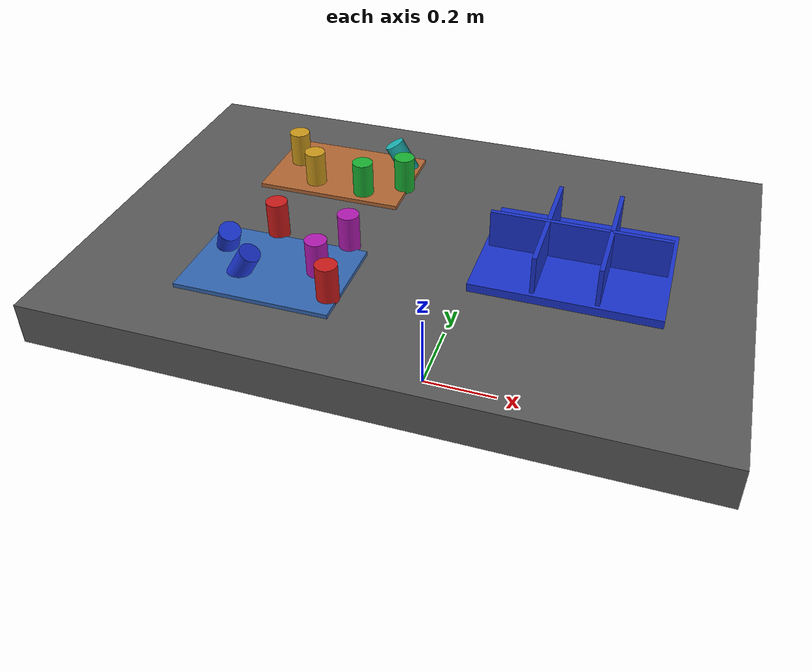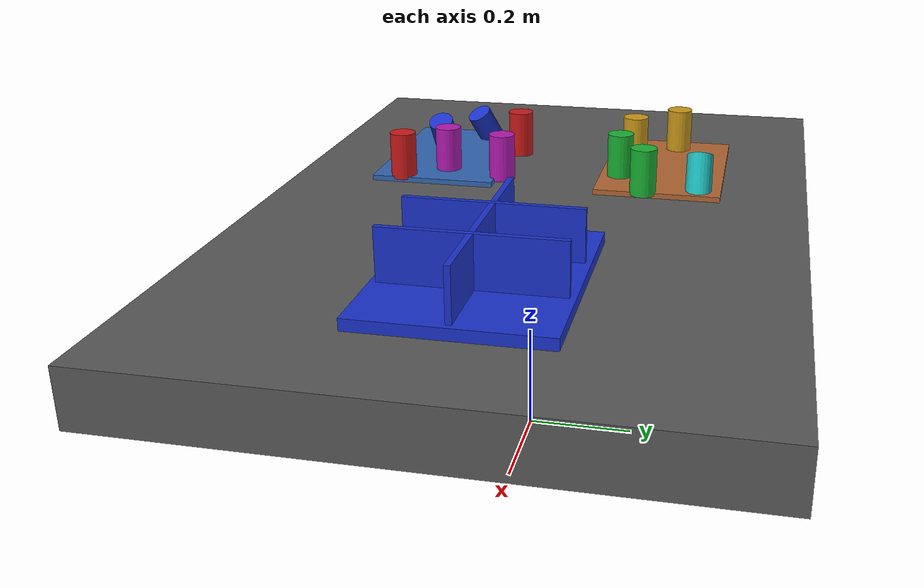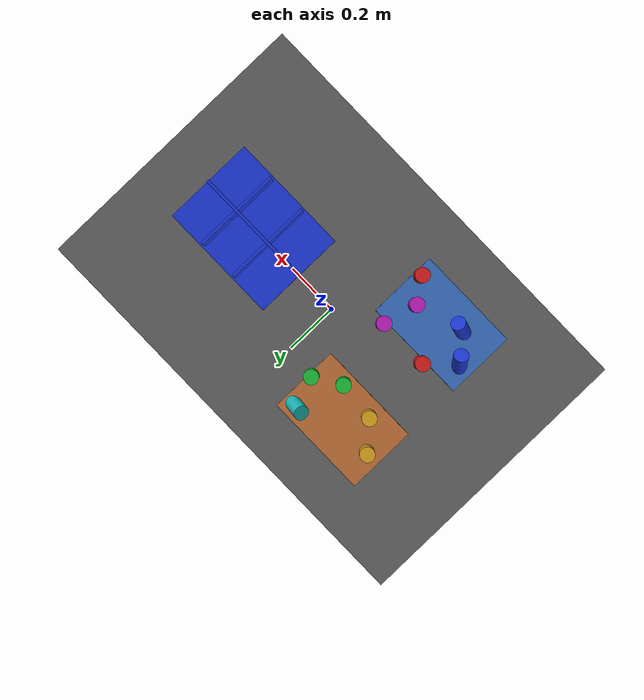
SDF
<?xml version="1.0" ?>
<sdf version="1.9">
  <!-- Standalone M1B scene.  The controller-backed Panda is spawned by the
       existing launch path; this file never alters the frozen M1A cube world. -->
  <world name="industrial_cylinder_v1">
    <physics name="bullet" type="bullet"><max_step_size>0.001</max_step_size><real_time_factor>1.0</real_time_factor></physics>
    <plugin name="gz::sim::systems::Physics" filename="gz-sim-physics-system"><engine><filename>gz-physics-bullet-featherstone-plugin</filename></engine></plugin>
    <plugin name="gz::sim::systems::UserCommands" filename="gz-sim-user-commands-system"/>
    <plugin name="gz::sim::systems::SceneBroadcaster" filename="gz-sim-scene-broadcaster-system"/>
    <plugin name="gz::sim::systems::Sensors" filename="gz-sim-sensors-system"><render_engine>ogre2</render_engine></plugin>
    <gravity>0 0 -9.81</gravity>
    <light type="directional" name="industrial_light"><pose>0 0 5 0 0 0</pose><direction>-0.3 0.2 -0.9</direction><diffuse>0.9 0.9 0.9 1</diffuse></light>
    <model name="industrial_work_table"><static>true</static><link name="link"><pose>0 0 0.4 0 0 0</pose><collision name="collision"><geometry><box><size>1.5 1.0 0.1</size></box></geometry></collision><visual name="visual"><geometry><box><size>1.5 1.0 0.1</size></box></geometry><material><diffuse>0.35 0.35 0.35 1</diffuse></material></visual></link></model>
    <model name="camera_fixture"><static>true</static><link name="camera_rgbd"><pose>-0.80 -0.80 1.40 0 0.77 0.93</pose><sensor name="front_rgbd" type="rgbd_camera"><always_on>1</always_on><update_rate>15</update_rate><topic>/xh/camera/rgbd</topic><camera><horizontal_fov>1.047</horizontal_fov><image><width>640</width><height>480</height><format>R8G8B8</format></image><clip><near>0.1</near><far>4.0</far></clip></camera></sensor></link></model>
    <model name="incoming_zone_a"><static>true</static><link name="link"><pose>-0.28 -0.22 0.455 0 0 0</pose><visual name="visual"><geometry><box><size>0.36 0.24 0.01</size></box></geometry><material><diffuse>0.2 0.4 0.7 1</diffuse></material></visual></link></model>
    <model name="incoming_zone_b"><static>true</static><link name="link"><pose>-0.28 0.22 0.455 0 0 0</pose><visual name="visual"><geometry><box><size>0.36 0.24 0.01</size></box></geometry><material><diffuse>0.7 0.4 0.2 1</diffuse></material></visual></link></model>
    <!-- M1B_RANDOM_PARTS_BEGIN -->
    <model name="cylinder_01"><pose>-0.3228 -0.0880 0.5000 0.0000 0.0000 2.2805</pose><link name="link"><inertial><mass>0.06</mass></inertial><collision name="collision"><geometry><cylinder><radius>0.025</radius><length>0.09</length></cylinder></geometry></collision><visual name="visual"><geometry><cylinder><radius>0.025</radius><length>0.09</length></cylinder></geometry><material><diffuse>0.800 0.100 0.100 1</diffuse><specular>0.15 0.15 0.15 1</specular></material></visual></link></model>
    <model name="cylinder_02"><pose>-0.1987 0.1386 0.5000 3.1416 0.0000 -2.7611</pose><link name="link"><inertial><mass>0.06</mass></inertial><collision name="collision"><geometry><cylinder><radius>0.025</radius><length>0.09</length></cylinder></geometry></collision><visual name="visual"><geometry><cylinder><radius>0.025</radius><length>0.09</length></cylinder></geometry><material><diffuse>0.100 0.700 0.200 1</diffuse><specular>0.15 0.15 0.15 1</specular></material></visual></link></model>
    <model name="cylinder_03"><pose>-0.3315 -0.2559 0.4800 0.4500 -0.3000 2.0107</pose><link name="link"><inertial><mass>0.06</mass></inertial><collision name="collision"><geometry><cylinder><radius>0.025</radius><length>0.09</length></cylinder></geometry></collision><visual name="visual"><geometry><cylinder><radius>0.025</radius><length>0.09</length></cylinder></geometry><material><diffuse>0.100 0.200 0.800 1</diffuse><specular>0.15 0.15 0.15 1</specular></material></visual></link></model>
    <model name="cylinder_04"><pose>-0.4077 0.2356 0.5000 0.0000 0.0000 -0.9914</pose><link name="link"><inertial><mass>0.06</mass></inertial><collision name="collision"><geometry><cylinder><radius>0.025</radius><length>0.09</length></cylinder></geometry></collision><visual name="visual"><geometry><cylinder><radius>0.025</radius><length>0.09</length></cylinder></geometry><material><diffuse>0.800 0.600 0.100 1</diffuse><specular>0.15 0.15 0.15 1</specular></material></visual></link></model>
    <model name="cylinder_05"><pose>-0.1766 -0.2048 0.5000 3.1416 0.0000 -2.2738</pose><link name="link"><inertial><mass>0.06</mass></inertial><collision name="collision"><geometry><cylinder><radius>0.025</radius><length>0.09</length></cylinder></geometry></collision><visual name="visual"><geometry><cylinder><radius>0.025</radius><length>0.09</length></cylinder></geometry><material><diffuse>0.700 0.100 0.700 1</diffuse><specular>0.15 0.15 0.15 1</specular></material></visual></link></model>
    <model name="cylinder_06"><pose>-0.1480 0.2968 0.4800 0.4500 -0.3000 -0.9795</pose><link name="link"><inertial><mass>0.06</mass></inertial><collision name="collision"><geometry><cylinder><radius>0.025</radius><length>0.09</length></cylinder></geometry></collision><visual name="visual"><geometry><cylinder><radius>0.025</radius><length>0.09</length></cylinder></geometry><material><diffuse>0.100 0.700 0.700 1</diffuse><specular>0.15 0.15 0.15 1</specular></material></visual></link></model>
    <model name="cylinder_07"><pose>-0.1209 -0.2814 0.5000 0.0000 0.0000 2.6192</pose><link name="link"><inertial><mass>0.06</mass></inertial><collision name="collision"><geometry><cylinder><radius>0.025</radius><length>0.09</length></cylinder></geometry></collision><visual name="visual"><geometry><cylinder><radius>0.025</radius><length>0.09</length></cylinder></geometry><material><diffuse>0.800 0.100 0.100 1</diffuse><specular>0.15 0.15 0.15 1</specular></material></visual></link></model>
    <model name="cylinder_08"><pose>-0.1091 0.1939 0.5000 3.1416 0.0000 -1.5472</pose><link name="link"><inertial><mass>0.06</mass></inertial><collision name="collision"><geometry><cylinder><radius>0.025</radius><length>0.09</length></cylinder></geometry></collision><visual name="visual"><geometry><cylinder><radius>0.025</radius><length>0.09</length></cylinder></geometry><material><diffuse>0.100 0.700 0.200 1</diffuse><specular>0.15 0.15 0.15 1</specular></material></visual></link></model>
    <model name="cylinder_09"><pose>-0.4053 -0.1795 0.4800 0.4500 -0.3000 1.3521</pose><link name="link"><inertial><mass>0.06</mass></inertial><collision name="collision"><geometry><cylinder><radius>0.025</radius><length>0.09</length></cylinder></geometry></collision><visual name="visual"><geometry><cylinder><radius>0.025</radius><length>0.09</length></cylinder></geometry><material><diffuse>0.100 0.200 0.800 1</diffuse><specular>0.15 0.15 0.15 1</specular></material></visual></link></model>
    <model name="cylinder_10"><pose>-0.3305 0.1523 0.5000 0.0000 0.0000 -1.8193</pose><link name="link"><inertial><mass>0.06</mass></inertial><collision name="collision"><geometry><cylinder><radius>0.025</radius><length>0.09</length></cylinder></geometry></collision><visual name="visual"><geometry><cylinder><radius>0.025</radius><length>0.09</length></cylinder></geometry><material><diffuse>0.800 0.600 0.100 1</diffuse><specular>0.15 0.15 0.15 1</specular></material></visual></link></model>
    <model name="cylinder_11"><pose>-0.1471 -0.0882 0.5000 3.1416 0.0000 -1.7910</pose><link name="link"><inertial><mass>0.06</mass></inertial><collision name="collision"><geometry><cylinder><radius>0.025</radius><length>0.09</length></cylinder></geometry></collision><visual name="visual"><geometry><cylinder><radius>0.025</radius><length>0.09</length></cylinder></geometry><material><diffuse>0.700 0.100 0.700 1</diffuse><specular>0.15 0.15 0.15 1</specular></material></visual></link></model>
    <!-- M1B_RANDOM_PARTS_END -->
    <model name="blue_partition_bin"><static>true</static><pose>0.36 0 0.45 0 0 0</pose><link name="link"><collision name="floor"><pose>0 0 0.01 0 0 0</pose><geometry><box><size>0.42 0.32 0.02</size></box></geometry></collision><visual name="floor_visual"><pose>0 0 0.01 0 0 0</pose><geometry><box><size>0.42 0.32 0.02</size></box></geometry><material><diffuse>0.1 0.2 0.8 1</diffuse></material></visual><visual name="row_divider"><pose>0 0 0.06 0 0 0</pose><geometry><box><size>0.40 0.01 0.10</size></box></geometry><material><diffuse>0.1 0.2 0.8 1</diffuse></material></visual><visual name="col_divider_a"><pose>-0.07 0 0.06 0 0 0</pose><geometry><box><size>0.01 0.30 0.10</size></box></geometry><material><diffuse>0.1 0.2 0.8 1</diffuse></material></visual><visual name="col_divider_b"><pose>0.07 0 0.06 0 0 0</pose><geometry><box><size>0.01 0.30 0.10</size></box></geometry><material><diffuse>0.1 0.2 0.8 1</diffuse></material></visual></link></model>
    <!-- Reserved only: second table, bin transport corridor, stackable-bin
         collision volume, and second arm mounting namespace. -->
  </world>
</sdf>
